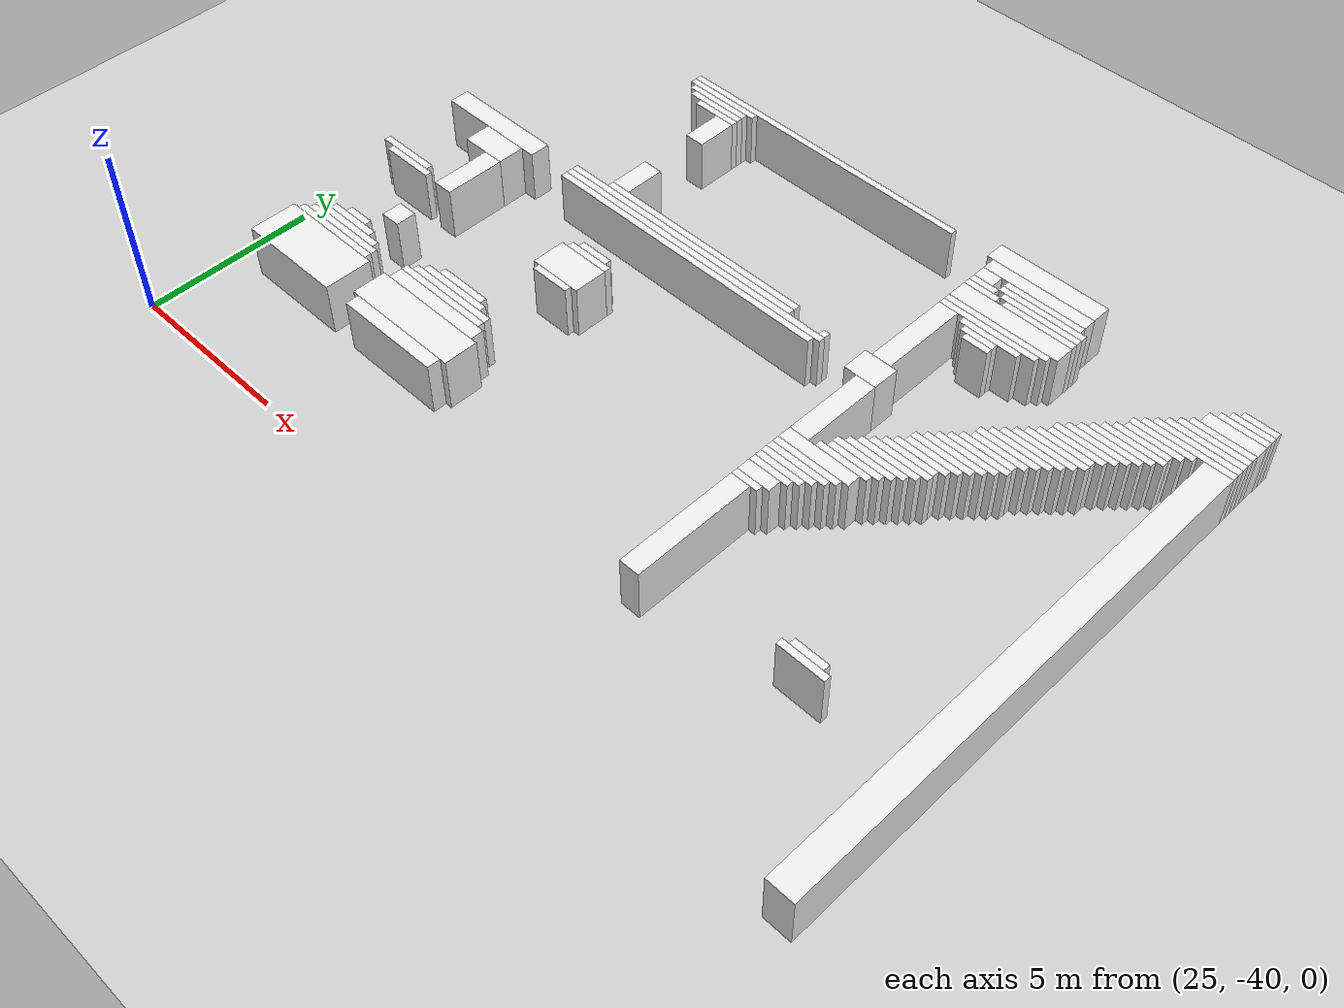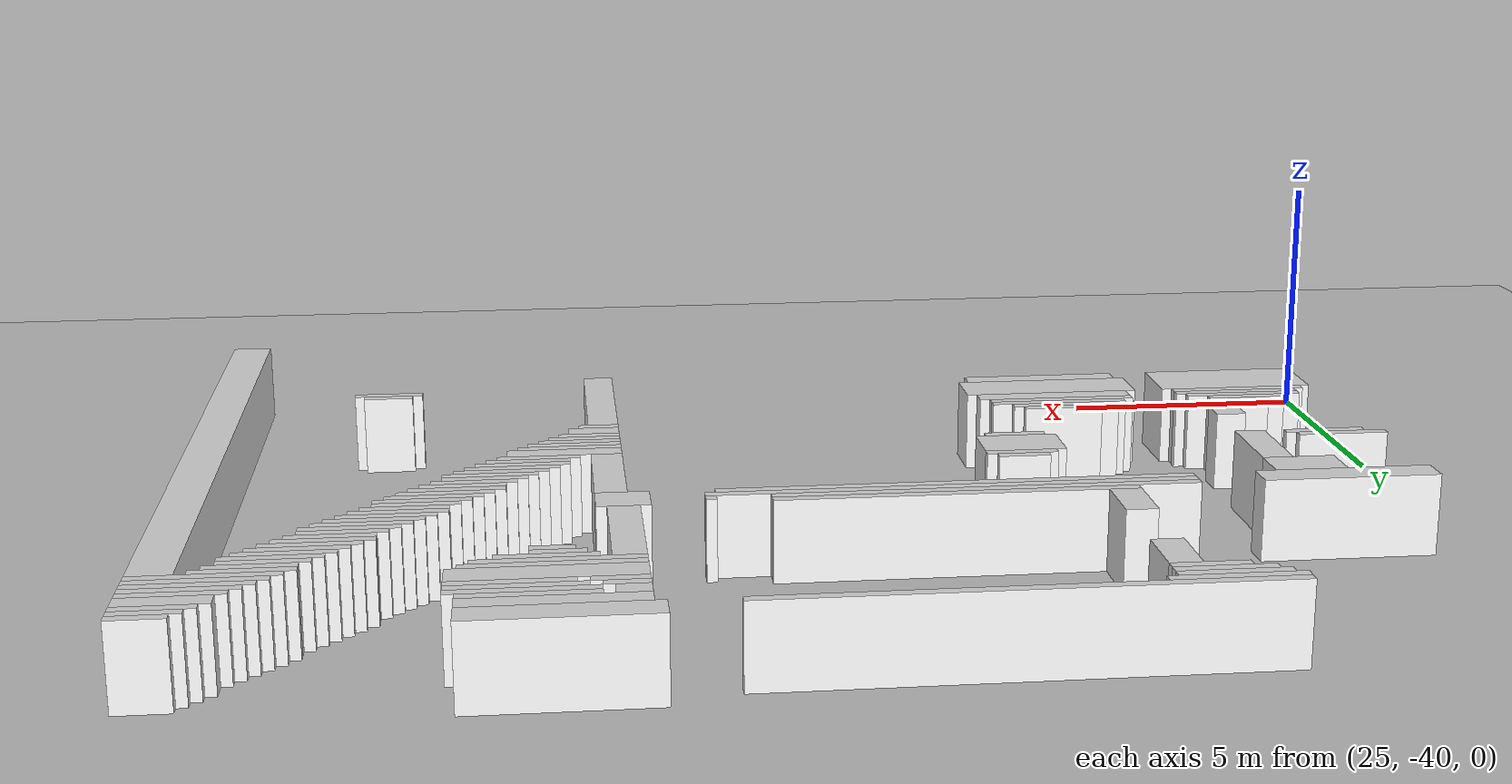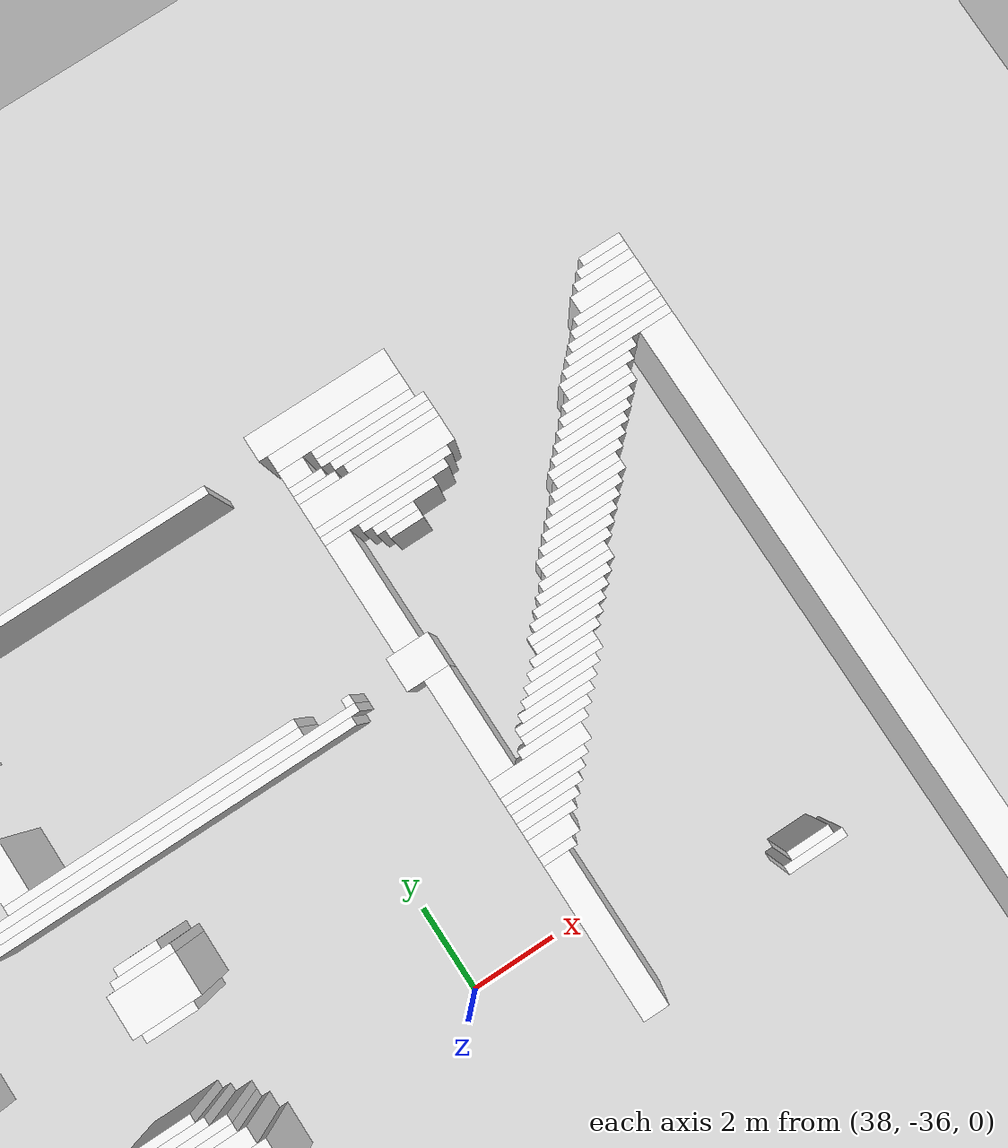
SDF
<sdf version="1.7">
 <world name="default">
  <model name="ground_plane">
   <static>1</static>
   <link name="link">
    <collision name="collision">
     <geometry><plane><normal>0 0 1</normal><size>120 120</size></plane></geometry>
    </collision>
    <visual name="visual">
     <geometry><plane><normal>0 0 1</normal><size>120 120</size></plane></geometry>
     <material>
      <script><uri>file://media/materials/scripts/gazebo.material</uri><name>Gazebo/Grey</name></script>
     </material>
    </visual>
   </link>
  </model>
  <model name="random_complex_02_model">
   <static>1</static>
   <link name="obs_2918">
    <pose>42.1000 -24.1000 0.8000 0 0 0</pose>
    <collision name="obs_2918_col"><geometry><box><size>3.4000 0.6000 1.6000</size></box></geometry></collision>
    <visual name="obs_2918_vis">
     <geometry><box><size>3.4000 0.6000 1.6000</size></box></geometry>
     <material>
      <script><uri>file://media/materials/scripts/gazebo.material</uri><name>Gazebo/White</name></script>
     </material>
    </visual>
   </link>
   <link name="obs_2926">
    <pose>34.5000 -24.3000 0.8000 0 0 0</pose>
    <collision name="obs_2926_col"><geometry><box><size>9.4000 0.2000 1.6000</size></box></geometry></collision>
    <visual name="obs_2926_vis">
     <geometry><box><size>9.4000 0.2000 1.6000</size></box></geometry>
     <material>
      <script><uri>file://media/materials/scripts/gazebo.material</uri><name>Gazebo/White</name></script>
     </material>
    </visual>
   </link>
   <link name="obs_2932">
    <pose>31.0000 -24.5000 0.8000 0 0 0</pose>
    <collision name="obs_2932_col"><geometry><box><size>2.4000 0.2000 1.6000</size></box></geometry></collision>
    <visual name="obs_2932_vis">
     <geometry><box><size>2.4000 0.2000 1.6000</size></box></geometry>
     <material>
      <script><uri>file://media/materials/scripts/gazebo.material</uri><name>Gazebo/White</name></script>
     </material>
    </visual>
   </link>
   <link name="obs_2933">
    <pose>48.7000 -24.5000 0.8000 0 0 0</pose>
    <collision name="obs_2933_col"><geometry><box><size>1.0000 0.2000 1.6000</size></box></geometry></collision>
    <visual name="obs_2933_vis">
     <geometry><box><size>1.0000 0.2000 1.6000</size></box></geometry>
     <material>
      <script><uri>file://media/materials/scripts/gazebo.material</uri><name>Gazebo/White</name></script>
     </material>
    </visual>
   </link>
   <link name="obs_2936">
    <pose>42.2000 -24.6000 0.8000 0 0 0</pose>
    <collision name="obs_2936_col"><geometry><box><size>3.2000 0.4000 1.6000</size></box></geometry></collision>
    <visual name="obs_2936_vis">
     <geometry><box><size>3.2000 0.4000 1.6000</size></box></geometry>
     <material>
      <script><uri>file://media/materials/scripts/gazebo.material</uri><name>Gazebo/White</name></script>
     </material>
    </visual>
   </link>
   <link name="obs_2940">
    <pose>31.0000 -24.7000 0.8000 0 0 0</pose>
    <collision name="obs_2940_col"><geometry><box><size>2.0000 0.2000 1.6000</size></box></geometry></collision>
    <visual name="obs_2940_vis">
     <geometry><box><size>2.0000 0.2000 1.6000</size></box></geometry>
     <material>
      <script><uri>file://media/materials/scripts/gazebo.material</uri><name>Gazebo/White</name></script>
     </material>
    </visual>
   </link>
   <link name="obs_2941">
    <pose>48.6000 -24.7000 0.8000 0 0 0</pose>
    <collision name="obs_2941_col"><geometry><box><size>1.2000 0.2000 1.6000</size></box></geometry></collision>
    <visual name="obs_2941_vis">
     <geometry><box><size>1.2000 0.2000 1.6000</size></box></geometry>
     <material>
      <script><uri>file://media/materials/scripts/gazebo.material</uri><name>Gazebo/White</name></script>
     </material>
    </visual>
   </link>
   <link name="obs_2946">
    <pose>31.1000 -24.9000 0.8000 0 0 0</pose>
    <collision name="obs_2946_col"><geometry><box><size>1.8000 0.2000 1.6000</size></box></geometry></collision>
    <visual name="obs_2946_vis">
     <geometry><box><size>1.8000 0.2000 1.6000</size></box></geometry>
     <material>
      <script><uri>file://media/materials/scripts/gazebo.material</uri><name>Gazebo/White</name></script>
     </material>
    </visual>
   </link>
   <link name="obs_2947">
    <pose>42.6000 -24.9000 0.8000 0 0 0</pose>
    <collision name="obs_2947_col"><geometry><box><size>2.4000 0.2000 1.6000</size></box></geometry></collision>
    <visual name="obs_2947_vis">
     <geometry><box><size>2.4000 0.2000 1.6000</size></box></geometry>
     <material>
      <script><uri>file://media/materials/scripts/gazebo.material</uri><name>Gazebo/White</name></script>
     </material>
    </visual>
   </link>
   <link name="obs_2948">
    <pose>48.5000 -24.9000 0.8000 0 0 0</pose>
    <collision name="obs_2948_col"><geometry><box><size>1.4000 0.2000 1.6000</size></box></geometry></collision>
    <visual name="obs_2948_vis">
     <geometry><box><size>1.4000 0.2000 1.6000</size></box></geometry>
     <material>
      <script><uri>file://media/materials/scripts/gazebo.material</uri><name>Gazebo/White</name></script>
     </material>
    </visual>
   </link>
   <link name="obs_2953">
    <pose>40.9000 -25.0000 0.8000 0 0 0</pose>
    <collision name="obs_2953_col"><geometry><box><size>0.6000 0.4000 1.6000</size></box></geometry></collision>
    <visual name="obs_2953_vis">
     <geometry><box><size>0.6000 0.4000 1.6000</size></box></geometry>
     <material>
      <script><uri>file://media/materials/scripts/gazebo.material</uri><name>Gazebo/White</name></script>
     </material>
    </visual>
   </link>
   <link name="obs_2955">
    <pose>31.3000 -25.1000 0.8000 0 0 0</pose>
    <collision name="obs_2955_col"><geometry><box><size>1.4000 0.2000 1.6000</size></box></geometry></collision>
    <visual name="obs_2955_vis">
     <geometry><box><size>1.4000 0.2000 1.6000</size></box></geometry>
     <material>
      <script><uri>file://media/materials/scripts/gazebo.material</uri><name>Gazebo/White</name></script>
     </material>
    </visual>
   </link>
   <link name="obs_2956">
    <pose>42.7000 -25.1000 0.8000 0 0 0</pose>
    <collision name="obs_2956_col"><geometry><box><size>2.6000 0.2000 1.6000</size></box></geometry></collision>
    <visual name="obs_2956_vis">
     <geometry><box><size>2.6000 0.2000 1.6000</size></box></geometry>
     <material>
      <script><uri>file://media/materials/scripts/gazebo.material</uri><name>Gazebo/White</name></script>
     </material>
    </visual>
   </link>
   <link name="obs_2959">
    <pose>48.4000 -25.2000 0.8000 0 0 0</pose>
    <collision name="obs_2959_col"><geometry><box><size>1.6000 0.4000 1.6000</size></box></geometry></collision>
    <visual name="obs_2959_vis">
     <geometry><box><size>1.6000 0.4000 1.6000</size></box></geometry>
     <material>
      <script><uri>file://media/materials/scripts/gazebo.material</uri><name>Gazebo/White</name></script>
     </material>
    </visual>
   </link>
   <link name="obs_2962">
    <pose>41.0000 -25.3000 0.8000 0 0 0</pose>
    <collision name="obs_2962_col"><geometry><box><size>0.8000 0.2000 1.6000</size></box></geometry></collision>
    <visual name="obs_2962_vis">
     <geometry><box><size>0.8000 0.2000 1.6000</size></box></geometry>
     <material>
      <script><uri>file://media/materials/scripts/gazebo.material</uri><name>Gazebo/White</name></script>
     </material>
    </visual>
   </link>
   <link name="obs_2963">
    <pose>42.8000 -25.3000 0.8000 0 0 0</pose>
    <collision name="obs_2963_col"><geometry><box><size>2.4000 0.2000 1.6000</size></box></geometry></collision>
    <visual name="obs_2963_vis">
     <geometry><box><size>2.4000 0.2000 1.6000</size></box></geometry>
     <material>
      <script><uri>file://media/materials/scripts/gazebo.material</uri><name>Gazebo/White</name></script>
     </material>
    </visual>
   </link>
   <link name="obs_2970">
    <pose>41.1000 -25.5000 0.8000 0 0 0</pose>
    <collision name="obs_2970_col"><geometry><box><size>1.0000 0.2000 1.6000</size></box></geometry></collision>
    <visual name="obs_2970_vis">
     <geometry><box><size>1.0000 0.2000 1.6000</size></box></geometry>
     <material>
      <script><uri>file://media/materials/scripts/gazebo.material</uri><name>Gazebo/White</name></script>
     </material>
    </visual>
   </link>
   <link name="obs_2971">
    <pose>42.9000 -25.5000 0.8000 0 0 0</pose>
    <collision name="obs_2971_col"><geometry><box><size>2.2000 0.2000 1.6000</size></box></geometry></collision>
    <visual name="obs_2971_vis">
     <geometry><box><size>2.2000 0.2000 1.6000</size></box></geometry>
     <material>
      <script><uri>file://media/materials/scripts/gazebo.material</uri><name>Gazebo/White</name></script>
     </material>
    </visual>
   </link>
   <link name="obs_2972">
    <pose>48.3000 -25.5000 0.8000 0 0 0</pose>
    <collision name="obs_2972_col"><geometry><box><size>1.8000 0.2000 1.6000</size></box></geometry></collision>
    <visual name="obs_2972_vis">
     <geometry><box><size>1.8000 0.2000 1.6000</size></box></geometry>
     <material>
      <script><uri>file://media/materials/scripts/gazebo.material</uri><name>Gazebo/White</name></script>
     </material>
    </visual>
   </link>
   <link name="obs_2976">
    <pose>48.2000 -25.7000 0.8000 0 0 0</pose>
    <collision name="obs_2976_col"><geometry><box><size>2.0000 0.2000 1.6000</size></box></geometry></collision>
    <visual name="obs_2976_vis">
     <geometry><box><size>2.0000 0.2000 1.6000</size></box></geometry>
     <material>
      <script><uri>file://media/materials/scripts/gazebo.material</uri><name>Gazebo/White</name></script>
     </material>
    </visual>
   </link>
   <link name="obs_2981">
    <pose>48.1000 -25.9000 0.8000 0 0 0</pose>
    <collision name="obs_2981_col"><geometry><box><size>2.2000 0.2000 1.6000</size></box></geometry></collision>
    <visual name="obs_2981_vis">
     <geometry><box><size>2.2000 0.2000 1.6000</size></box></geometry>
     <material>
      <script><uri>file://media/materials/scripts/gazebo.material</uri><name>Gazebo/White</name></script>
     </material>
    </visual>
   </link>
   <link name="obs_2983">
    <pose>42.3000 -25.9000 0.8000 0 0 0</pose>
    <collision name="obs_2983_col"><geometry><box><size>3.4000 0.6000 1.6000</size></box></geometry></collision>
    <visual name="obs_2983_vis">
     <geometry><box><size>3.4000 0.6000 1.6000</size></box></geometry>
     <material>
      <script><uri>file://media/materials/scripts/gazebo.material</uri><name>Gazebo/White</name></script>
     </material>
    </visual>
   </link>
   <link name="obs_2987">
    <pose>48.0000 -26.1000 0.8000 0 0 0</pose>
    <collision name="obs_2987_col"><geometry><box><size>2.4000 0.2000 1.6000</size></box></geometry></collision>
    <visual name="obs_2987_vis">
     <geometry><box><size>2.4000 0.2000 1.6000</size></box></geometry>
     <material>
      <script><uri>file://media/materials/scripts/gazebo.material</uri><name>Gazebo/White</name></script>
     </material>
    </visual>
   </link>
   <link name="obs_2989">
    <pose>31.7000 -25.8000 0.8000 0 0 0</pose>
    <collision name="obs_2989_col"><geometry><box><size>0.6000 1.2000 1.6000</size></box></geometry></collision>
    <visual name="obs_2989_vis">
     <geometry><box><size>0.6000 1.2000 1.6000</size></box></geometry>
     <material>
      <script><uri>file://media/materials/scripts/gazebo.material</uri><name>Gazebo/White</name></script>
     </material>
    </visual>
   </link>
   <link name="obs_2993">
    <pose>42.2000 -26.3000 0.8000 0 0 0</pose>
    <collision name="obs_2993_col"><geometry><box><size>3.2000 0.2000 1.6000</size></box></geometry></collision>
    <visual name="obs_2993_vis">
     <geometry><box><size>3.2000 0.2000 1.6000</size></box></geometry>
     <material>
      <script><uri>file://media/materials/scripts/gazebo.material</uri><name>Gazebo/White</name></script>
     </material>
    </visual>
   </link>
   <link name="obs_2994">
    <pose>47.9000 -26.3000 0.8000 0 0 0</pose>
    <collision name="obs_2994_col"><geometry><box><size>2.6000 0.2000 1.6000</size></box></geometry></collision>
    <visual name="obs_2994_vis">
     <geometry><box><size>2.6000 0.2000 1.6000</size></box></geometry>
     <material>
      <script><uri>file://media/materials/scripts/gazebo.material</uri><name>Gazebo/White</name></script>
     </material>
    </visual>
   </link>
   <link name="obs_2998">
    <pose>42.1000 -26.5000 0.8000 0 0 0</pose>
    <collision name="obs_2998_col"><geometry><box><size>3.0000 0.2000 1.6000</size></box></geometry></collision>
    <visual name="obs_2998_vis">
     <geometry><box><size>3.0000 0.2000 1.6000</size></box></geometry>
     <material>
      <script><uri>file://media/materials/scripts/gazebo.material</uri><name>Gazebo/White</name></script>
     </material>
    </visual>
   </link>
   <link name="obs_2999">
    <pose>47.3000 -26.5000 0.8000 0 0 0</pose>
    <collision name="obs_2999_col"><geometry><box><size>1.8000 0.2000 1.6000</size></box></geometry></collision>
    <visual name="obs_2999_vis">
     <geometry><box><size>1.8000 0.2000 1.6000</size></box></geometry>
     <material>
      <script><uri>file://media/materials/scripts/gazebo.material</uri><name>Gazebo/White</name></script>
     </material>
    </visual>
   </link>
   <link name="obs_3001">
    <pose>42.3000 -26.7000 0.8000 0 0 0</pose>
    <collision name="obs_3001_col"><geometry><box><size>1.8000 0.2000 1.6000</size></box></geometry></collision>
    <visual name="obs_3001_vis">
     <geometry><box><size>1.8000 0.2000 1.6000</size></box></geometry>
     <material>
      <script><uri>file://media/materials/scripts/gazebo.material</uri><name>Gazebo/White</name></script>
     </material>
    </visual>
   </link>
   <link name="obs_3002">
    <pose>47.2000 -26.7000 0.8000 0 0 0</pose>
    <collision name="obs_3002_col"><geometry><box><size>1.6000 0.2000 1.6000</size></box></geometry></collision>
    <visual name="obs_3002_vis">
     <geometry><box><size>1.6000 0.2000 1.6000</size></box></geometry>
     <material>
      <script><uri>file://media/materials/scripts/gazebo.material</uri><name>Gazebo/White</name></script>
     </material>
    </visual>
   </link>
   <link name="obs_3005">
    <pose>42.1000 -26.9000 0.8000 0 0 0</pose>
    <collision name="obs_3005_col"><geometry><box><size>1.0000 0.2000 1.6000</size></box></geometry></collision>
    <visual name="obs_3005_vis">
     <geometry><box><size>1.0000 0.2000 1.6000</size></box></geometry>
     <material>
      <script><uri>file://media/materials/scripts/gazebo.material</uri><name>Gazebo/White</name></script>
     </material>
    </visual>
   </link>
   <link name="obs_3006">
    <pose>47.0000 -26.9000 0.8000 0 0 0</pose>
    <collision name="obs_3006_col"><geometry><box><size>1.6000 0.2000 1.6000</size></box></geometry></collision>
    <visual name="obs_3006_vis">
     <geometry><box><size>1.6000 0.2000 1.6000</size></box></geometry>
     <material>
      <script><uri>file://media/materials/scripts/gazebo.material</uri><name>Gazebo/White</name></script>
     </material>
    </visual>
   </link>
   <link name="obs_3009">
    <pose>42.2000 -27.1000 0.8000 0 0 0</pose>
    <collision name="obs_3009_col"><geometry><box><size>0.8000 0.2000 1.6000</size></box></geometry></collision>
    <visual name="obs_3009_vis">
     <geometry><box><size>0.8000 0.2000 1.6000</size></box></geometry>
     <material>
      <script><uri>file://media/materials/scripts/gazebo.material</uri><name>Gazebo/White</name></script>
     </material>
    </visual>
   </link>
   <link name="obs_3010">
    <pose>46.9000 -27.1000 0.8000 0 0 0</pose>
    <collision name="obs_3010_col"><geometry><box><size>1.8000 0.2000 1.6000</size></box></geometry></collision>
    <visual name="obs_3010_vis">
     <geometry><box><size>1.8000 0.2000 1.6000</size></box></geometry>
     <material>
      <script><uri>file://media/materials/scripts/gazebo.material</uri><name>Gazebo/White</name></script>
     </material>
    </visual>
   </link>
   <link name="obs_3015">
    <pose>46.7000 -27.3000 0.8000 0 0 0</pose>
    <collision name="obs_3015_col"><geometry><box><size>1.8000 0.2000 1.6000</size></box></geometry></collision>
    <visual name="obs_3015_vis">
     <geometry><box><size>1.8000 0.2000 1.6000</size></box></geometry>
     <material>
      <script><uri>file://media/materials/scripts/gazebo.material</uri><name>Gazebo/White</name></script>
     </material>
    </visual>
   </link>
   <link name="obs_3018">
    <pose>46.5000 -27.5000 0.8000 0 0 0</pose>
    <collision name="obs_3018_col"><geometry><box><size>1.8000 0.2000 1.6000</size></box></geometry></collision>
    <visual name="obs_3018_vis">
     <geometry><box><size>1.8000 0.2000 1.6000</size></box></geometry>
     <material>
      <script><uri>file://media/materials/scripts/gazebo.material</uri><name>Gazebo/White</name></script>
     </material>
    </visual>
   </link>
   <link name="obs_3021">
    <pose>46.3000 -27.7000 0.8000 0 0 0</pose>
    <collision name="obs_3021_col"><geometry><box><size>1.8000 0.2000 1.6000</size></box></geometry></collision>
    <visual name="obs_3021_vis">
     <geometry><box><size>1.8000 0.2000 1.6000</size></box></geometry>
     <material>
      <script><uri>file://media/materials/scripts/gazebo.material</uri><name>Gazebo/White</name></script>
     </material>
    </visual>
   </link>
   <link name="obs_3025">
    <pose>46.1000 -27.9000 0.8000 0 0 0</pose>
    <collision name="obs_3025_col"><geometry><box><size>1.8000 0.2000 1.6000</size></box></geometry></collision>
    <visual name="obs_3025_vis">
     <geometry><box><size>1.8000 0.2000 1.6000</size></box></geometry>
     <material>
      <script><uri>file://media/materials/scripts/gazebo.material</uri><name>Gazebo/White</name></script>
     </material>
    </visual>
   </link>
   <link name="obs_3032">
    <pose>46.0000 -28.1000 0.8000 0 0 0</pose>
    <collision name="obs_3032_col"><geometry><box><size>1.6000 0.2000 1.6000</size></box></geometry></collision>
    <visual name="obs_3032_vis">
     <geometry><box><size>1.6000 0.2000 1.6000</size></box></geometry>
     <material>
      <script><uri>file://media/materials/scripts/gazebo.material</uri><name>Gazebo/White</name></script>
     </material>
    </visual>
   </link>
   <link name="obs_3036">
    <pose>45.8000 -28.3000 0.8000 0 0 0</pose>
    <collision name="obs_3036_col"><geometry><box><size>1.6000 0.2000 1.6000</size></box></geometry></collision>
    <visual name="obs_3036_vis">
     <geometry><box><size>1.6000 0.2000 1.6000</size></box></geometry>
     <material>
      <script><uri>file://media/materials/scripts/gazebo.material</uri><name>Gazebo/White</name></script>
     </material>
    </visual>
   </link>
   <link name="obs_3040">
    <pose>45.7000 -28.5000 0.8000 0 0 0</pose>
    <collision name="obs_3040_col"><geometry><box><size>1.8000 0.2000 1.6000</size></box></geometry></collision>
    <visual name="obs_3040_vis">
     <geometry><box><size>1.8000 0.2000 1.6000</size></box></geometry>
     <material>
      <script><uri>file://media/materials/scripts/gazebo.material</uri><name>Gazebo/White</name></script>
     </material>
    </visual>
   </link>
   <link name="obs_3045">
    <pose>45.5000 -28.7000 0.8000 0 0 0</pose>
    <collision name="obs_3045_col"><geometry><box><size>1.8000 0.2000 1.6000</size></box></geometry></collision>
    <visual name="obs_3045_vis">
     <geometry><box><size>1.8000 0.2000 1.6000</size></box></geometry>
     <material>
      <script><uri>file://media/materials/scripts/gazebo.material</uri><name>Gazebo/White</name></script>
     </material>
    </visual>
   </link>
   <link name="obs_3049">
    <pose>45.3000 -28.9000 0.8000 0 0 0</pose>
    <collision name="obs_3049_col"><geometry><box><size>1.8000 0.2000 1.6000</size></box></geometry></collision>
    <visual name="obs_3049_vis">
     <geometry><box><size>1.8000 0.2000 1.6000</size></box></geometry>
     <material>
      <script><uri>file://media/materials/scripts/gazebo.material</uri><name>Gazebo/White</name></script>
     </material>
    </visual>
   </link>
   <link name="obs_3050">
    <pose>40.9000 -27.9000 0.8000 0 0 0</pose>
    <collision name="obs_3050_col"><geometry><box><size>0.6000 2.6000 1.6000</size></box></geometry></collision>
    <visual name="obs_3050_vis">
     <geometry><box><size>0.6000 2.6000 1.6000</size></box></geometry>
     <material>
      <script><uri>file://media/materials/scripts/gazebo.material</uri><name>Gazebo/White</name></script>
     </material>
    </visual>
   </link>
   <link name="obs_3051">
    <pose>31.7000 -28.6000 0.8000 0 0 0</pose>
    <collision name="obs_3051_col"><geometry><box><size>0.6000 1.2000 1.6000</size></box></geometry></collision>
    <visual name="obs_3051_vis">
     <geometry><box><size>0.6000 1.2000 1.6000</size></box></geometry>
     <material>
      <script><uri>file://media/materials/scripts/gazebo.material</uri><name>Gazebo/White</name></script>
     </material>
    </visual>
   </link>
   <link name="obs_3055">
    <pose>45.1000 -29.1000 0.8000 0 0 0</pose>
    <collision name="obs_3055_col"><geometry><box><size>1.8000 0.2000 1.6000</size></box></geometry></collision>
    <visual name="obs_3055_vis">
     <geometry><box><size>1.8000 0.2000 1.6000</size></box></geometry>
     <material>
      <script><uri>file://media/materials/scripts/gazebo.material</uri><name>Gazebo/White</name></script>
     </material>
    </visual>
   </link>
   <link name="obs_3062">
    <pose>34.8000 -29.3000 0.8000 0 0 0</pose>
    <collision name="obs_3062_col"><geometry><box><size>6.8000 0.2000 1.6000</size></box></geometry></collision>
    <visual name="obs_3062_vis">
     <geometry><box><size>6.8000 0.2000 1.6000</size></box></geometry>
     <material>
      <script><uri>file://media/materials/scripts/gazebo.material</uri><name>Gazebo/White</name></script>
     </material>
    </visual>
   </link>
   <link name="obs_3063">
    <pose>44.9000 -29.3000 0.8000 0 0 0</pose>
    <collision name="obs_3063_col"><geometry><box><size>1.8000 0.2000 1.6000</size></box></geometry></collision>
    <visual name="obs_3063_vis">
     <geometry><box><size>1.8000 0.2000 1.6000</size></box></geometry>
     <material>
      <script><uri>file://media/materials/scripts/gazebo.material</uri><name>Gazebo/White</name></script>
     </material>
    </visual>
   </link>
   <link name="obs_3069">
    <pose>34.2000 -29.5000 0.8000 0 0 0</pose>
    <collision name="obs_3069_col"><geometry><box><size>8.0000 0.2000 1.6000</size></box></geometry></collision>
    <visual name="obs_3069_vis">
     <geometry><box><size>8.0000 0.2000 1.6000</size></box></geometry>
     <material>
      <script><uri>file://media/materials/scripts/gazebo.material</uri><name>Gazebo/White</name></script>
     </material>
    </visual>
   </link>
   <link name="obs_3070">
    <pose>39.3000 -29.5000 0.8000 0 0 0</pose>
    <collision name="obs_3070_col"><geometry><box><size>0.2000 0.2000 1.6000</size></box></geometry></collision>
    <visual name="obs_3070_vis">
     <geometry><box><size>0.2000 0.2000 1.6000</size></box></geometry>
     <material>
      <script><uri>file://media/materials/scripts/gazebo.material</uri><name>Gazebo/White</name></script>
     </material>
    </visual>
   </link>
   <link name="obs_3071">
    <pose>44.8000 -29.5000 0.8000 0 0 0</pose>
    <collision name="obs_3071_col"><geometry><box><size>1.6000 0.2000 1.6000</size></box></geometry></collision>
    <visual name="obs_3071_vis">
     <geometry><box><size>1.6000 0.2000 1.6000</size></box></geometry>
     <material>
      <script><uri>file://media/materials/scripts/gazebo.material</uri><name>Gazebo/White</name></script>
     </material>
    </visual>
   </link>
   <link name="obs_3076">
    <pose>34.8000 -29.7000 0.8000 0 0 0</pose>
    <collision name="obs_3076_col"><geometry><box><size>9.2000 0.2000 1.6000</size></box></geometry></collision>
    <visual name="obs_3076_vis">
     <geometry><box><size>9.2000 0.2000 1.6000</size></box></geometry>
     <material>
      <script><uri>file://media/materials/scripts/gazebo.material</uri><name>Gazebo/White</name></script>
     </material>
    </visual>
   </link>
   <link name="obs_3077">
    <pose>44.6000 -29.7000 0.8000 0 0 0</pose>
    <collision name="obs_3077_col"><geometry><box><size>1.6000 0.2000 1.6000</size></box></geometry></collision>
    <visual name="obs_3077_vis">
     <geometry><box><size>1.6000 0.2000 1.6000</size></box></geometry>
     <material>
      <script><uri>file://media/materials/scripts/gazebo.material</uri><name>Gazebo/White</name></script>
     </material>
    </visual>
   </link>
   <link name="obs_3078">
    <pose>40.9000 -29.6000 0.8000 0 0 0</pose>
    <collision name="obs_3078_col"><geometry><box><size>1.0000 0.8000 1.6000</size></box></geometry></collision>
    <visual name="obs_3078_vis">
     <geometry><box><size>1.0000 0.8000 1.6000</size></box></geometry>
     <material>
      <script><uri>file://media/materials/scripts/gazebo.material</uri><name>Gazebo/White</name></script>
     </material>
    </visual>
   </link>
   <link name="obs_3079">
    <pose>27.3000 -29.7000 0.8000 0 0 0</pose>
    <collision name="obs_3079_col"><geometry><box><size>3.4000 0.6000 1.6000</size></box></geometry></collision>
    <visual name="obs_3079_vis">
     <geometry><box><size>3.4000 0.6000 1.6000</size></box></geometry>
     <material>
      <script><uri>file://media/materials/scripts/gazebo.material</uri><name>Gazebo/White</name></script>
     </material>
    </visual>
   </link>
   <link name="obs_3082">
    <pose>34.7000 -29.9000 0.8000 0 0 0</pose>
    <collision name="obs_3082_col"><geometry><box><size>9.0000 0.2000 1.6000</size></box></geometry></collision>
    <visual name="obs_3082_vis">
     <geometry><box><size>9.0000 0.2000 1.6000</size></box></geometry>
     <material>
      <script><uri>file://media/materials/scripts/gazebo.material</uri><name>Gazebo/White</name></script>
     </material>
    </visual>
   </link>
   <link name="obs_3083">
    <pose>44.5000 -29.9000 0.8000 0 0 0</pose>
    <collision name="obs_3083_col"><geometry><box><size>1.8000 0.2000 1.6000</size></box></geometry></collision>
    <visual name="obs_3083_vis">
     <geometry><box><size>1.8000 0.2000 1.6000</size></box></geometry>
     <material>
      <script><uri>file://media/materials/scripts/gazebo.material</uri><name>Gazebo/White</name></script>
     </material>
    </visual>
   </link>
   <link name="obs_3089">
    <pose>44.3000 -30.1000 0.8000 0 0 0</pose>
    <collision name="obs_3089_col"><geometry><box><size>1.8000 0.2000 1.6000</size></box></geometry></collision>
    <visual name="obs_3089_vis">
     <geometry><box><size>1.8000 0.2000 1.6000</size></box></geometry>
     <material>
      <script><uri>file://media/materials/scripts/gazebo.material</uri><name>Gazebo/White</name></script>
     </material>
    </visual>
   </link>
   <link name="obs_3093">
    <pose>44.1000 -30.3000 0.8000 0 0 0</pose>
    <collision name="obs_3093_col"><geometry><box><size>1.8000 0.2000 1.6000</size></box></geometry></collision>
    <visual name="obs_3093_vis">
     <geometry><box><size>1.8000 0.2000 1.6000</size></box></geometry>
     <material>
      <script><uri>file://media/materials/scripts/gazebo.material</uri><name>Gazebo/White</name></script>
     </material>
    </visual>
   </link>
   <link name="obs_3099">
    <pose>43.9000 -30.5000 0.8000 0 0 0</pose>
    <collision name="obs_3099_col"><geometry><box><size>1.8000 0.2000 1.6000</size></box></geometry></collision>
    <visual name="obs_3099_vis">
     <geometry><box><size>1.8000 0.2000 1.6000</size></box></geometry>
     <material>
      <script><uri>file://media/materials/scripts/gazebo.material</uri><name>Gazebo/White</name></script>
     </material>
    </visual>
   </link>
   <link name="obs_3100">
    <pose>27.9000 -30.4000 0.8000 0 0 0</pose>
    <collision name="obs_3100_col"><geometry><box><size>1.4000 0.8000 1.6000</size></box></geometry></collision>
    <visual name="obs_3100_vis">
     <geometry><box><size>1.4000 0.8000 1.6000</size></box></geometry>
     <material>
      <script><uri>file://media/materials/scripts/gazebo.material</uri><name>Gazebo/White</name></script>
     </material>
    </visual>
   </link>
   <link name="obs_3106">
    <pose>43.8000 -30.7000 0.8000 0 0 0</pose>
    <collision name="obs_3106_col"><geometry><box><size>1.6000 0.2000 1.6000</size></box></geometry></collision>
    <visual name="obs_3106_vis">
     <geometry><box><size>1.6000 0.2000 1.6000</size></box></geometry>
     <material>
      <script><uri>file://media/materials/scripts/gazebo.material</uri><name>Gazebo/White</name></script>
     </material>
    </visual>
   </link>
   <link name="obs_3112">
    <pose>43.6000 -30.9000 0.8000 0 0 0</pose>
    <collision name="obs_3112_col"><geometry><box><size>1.6000 0.2000 1.6000</size></box></geometry></collision>
    <visual name="obs_3112_vis">
     <geometry><box><size>1.6000 0.2000 1.6000</size></box></geometry>
     <material>
      <script><uri>file://media/materials/scripts/gazebo.material</uri><name>Gazebo/White</name></script>
     </material>
    </visual>
   </link>
   <link name="obs_3121">
    <pose>43.4000 -31.1000 0.8000 0 0 0</pose>
    <collision name="obs_3121_col"><geometry><box><size>1.6000 0.2000 1.6000</size></box></geometry></collision>
    <visual name="obs_3121_vis">
     <geometry><box><size>1.6000 0.2000 1.6000</size></box></geometry>
     <material>
      <script><uri>file://media/materials/scripts/gazebo.material</uri><name>Gazebo/White</name></script>
     </material>
    </visual>
   </link>
   <link name="obs_3126">
    <pose>43.3000 -31.3000 0.8000 0 0 0</pose>
    <collision name="obs_3126_col"><geometry><box><size>1.8000 0.2000 1.6000</size></box></geometry></collision>
    <visual name="obs_3126_vis">
     <geometry><box><size>1.8000 0.2000 1.6000</size></box></geometry>
     <material>
      <script><uri>file://media/materials/scripts/gazebo.material</uri><name>Gazebo/White</name></script>
     </material>
    </visual>
   </link>
   <link name="obs_3131">
    <pose>33.1000 -31.5000 0.8000 0 0 0</pose>
    <collision name="obs_3131_col"><geometry><box><size>1.0000 0.2000 1.6000</size></box></geometry></collision>
    <visual name="obs_3131_vis">
     <geometry><box><size>1.0000 0.2000 1.6000</size></box></geometry>
     <material>
      <script><uri>file://media/materials/scripts/gazebo.material</uri><name>Gazebo/White</name></script>
     </material>
    </visual>
   </link>
   <link name="obs_3132">
    <pose>43.1000 -31.5000 0.8000 0 0 0</pose>
    <collision name="obs_3132_col"><geometry><box><size>1.8000 0.2000 1.6000</size></box></geometry></collision>
    <visual name="obs_3132_vis">
     <geometry><box><size>1.8000 0.2000 1.6000</size></box></geometry>
     <material>
      <script><uri>file://media/materials/scripts/gazebo.material</uri><name>Gazebo/White</name></script>
     </material>
    </visual>
   </link>
   <link name="obs_3137">
    <pose>33.1000 -31.7000 0.8000 0 0 0</pose>
    <collision name="obs_3137_col"><geometry><box><size>1.4000 0.2000 1.6000</size></box></geometry></collision>
    <visual name="obs_3137_vis">
     <geometry><box><size>1.4000 0.2000 1.6000</size></box></geometry>
     <material>
      <script><uri>file://media/materials/scripts/gazebo.material</uri><name>Gazebo/White</name></script>
     </material>
    </visual>
   </link>
   <link name="obs_3138">
    <pose>42.9000 -31.7000 0.8000 0 0 0</pose>
    <collision name="obs_3138_col"><geometry><box><size>1.8000 0.2000 1.6000</size></box></geometry></collision>
    <visual name="obs_3138_vis">
     <geometry><box><size>1.8000 0.2000 1.6000</size></box></geometry>
     <material>
      <script><uri>file://media/materials/scripts/gazebo.material</uri><name>Gazebo/White</name></script>
     </material>
    </visual>
   </link>
   <link name="obs_3148">
    <pose>42.7000 -31.9000 0.8000 0 0 0</pose>
    <collision name="obs_3148_col"><geometry><box><size>1.8000 0.2000 1.6000</size></box></geometry></collision>
    <visual name="obs_3148_vis">
     <geometry><box><size>1.8000 0.2000 1.6000</size></box></geometry>
     <material>
      <script><uri>file://media/materials/scripts/gazebo.material</uri><name>Gazebo/White</name></script>
     </material>
    </visual>
   </link>
   <link name="obs_3152">
    <pose>42.6000 -32.1000 0.8000 0 0 0</pose>
    <collision name="obs_3152_col"><geometry><box><size>1.6000 0.2000 1.6000</size></box></geometry></collision>
    <visual name="obs_3152_vis">
     <geometry><box><size>1.6000 0.2000 1.6000</size></box></geometry>
     <material>
      <script><uri>file://media/materials/scripts/gazebo.material</uri><name>Gazebo/White</name></script>
     </material>
    </visual>
   </link>
   <link name="obs_3153">
    <pose>41.1000 -31.2000 0.8000 0 0 0</pose>
    <collision name="obs_3153_col"><geometry><box><size>0.6000 2.4000 1.6000</size></box></geometry></collision>
    <visual name="obs_3153_vis">
     <geometry><box><size>0.6000 2.4000 1.6000</size></box></geometry>
     <material>
      <script><uri>file://media/materials/scripts/gazebo.material</uri><name>Gazebo/White</name></script>
     </material>
    </visual>
   </link>
   <link name="obs_3156">
    <pose>26.5000 -32.3000 0.8000 0 0 0</pose>
    <collision name="obs_3156_col"><geometry><box><size>1.8000 0.2000 1.6000</size></box></geometry></collision>
    <visual name="obs_3156_vis">
     <geometry><box><size>1.8000 0.2000 1.6000</size></box></geometry>
     <material>
      <script><uri>file://media/materials/scripts/gazebo.material</uri><name>Gazebo/White</name></script>
     </material>
    </visual>
   </link>
   <link name="obs_3157">
    <pose>42.4000 -32.3000 0.8000 0 0 0</pose>
    <collision name="obs_3157_col"><geometry><box><size>1.6000 0.2000 1.6000</size></box></geometry></collision>
    <visual name="obs_3157_vis">
     <geometry><box><size>1.6000 0.2000 1.6000</size></box></geometry>
     <material>
      <script><uri>file://media/materials/scripts/gazebo.material</uri><name>Gazebo/White</name></script>
     </material>
    </visual>
   </link>
   <link name="obs_3158">
    <pose>28.3000 -31.7000 0.8000 0 0 0</pose>
    <collision name="obs_3158_col"><geometry><box><size>0.6000 1.8000 1.6000</size></box></geometry></collision>
    <visual name="obs_3158_vis">
     <geometry><box><size>0.6000 1.8000 1.6000</size></box></geometry>
     <material>
      <script><uri>file://media/materials/scripts/gazebo.material</uri><name>Gazebo/White</name></script>
     </material>
    </visual>
   </link>
   <link name="obs_3160">
    <pose>26.8000 -32.5000 0.8000 0 0 0</pose>
    <collision name="obs_3160_col"><geometry><box><size>1.6000 0.2000 1.6000</size></box></geometry></collision>
    <visual name="obs_3160_vis">
     <geometry><box><size>1.6000 0.2000 1.6000</size></box></geometry>
     <material>
      <script><uri>file://media/materials/scripts/gazebo.material</uri><name>Gazebo/White</name></script>
     </material>
    </visual>
   </link>
   <link name="obs_3161">
    <pose>33.0000 -32.3000 0.8000 0 0 0</pose>
    <collision name="obs_3161_col"><geometry><box><size>1.6000 1.0000 1.6000</size></box></geometry></collision>
    <visual name="obs_3161_vis">
     <geometry><box><size>1.6000 1.0000 1.6000</size></box></geometry>
     <material>
      <script><uri>file://media/materials/scripts/gazebo.material</uri><name>Gazebo/White</name></script>
     </material>
    </visual>
   </link>
   <link name="obs_3162">
    <pose>41.9000 -32.6000 0.8000 0 0 0</pose>
    <collision name="obs_3162_col"><geometry><box><size>2.2000 0.4000 1.6000</size></box></geometry></collision>
    <visual name="obs_3162_vis">
     <geometry><box><size>2.2000 0.4000 1.6000</size></box></geometry>
     <material>
      <script><uri>file://media/materials/scripts/gazebo.material</uri><name>Gazebo/White</name></script>
     </material>
    </visual>
   </link>
   <link name="obs_3165">
    <pose>33.0000 -32.9000 0.8000 0 0 0</pose>
    <collision name="obs_3165_col"><geometry><box><size>1.2000 0.2000 1.6000</size></box></geometry></collision>
    <visual name="obs_3165_vis">
     <geometry><box><size>1.2000 0.2000 1.6000</size></box></geometry>
     <material>
      <script><uri>file://media/materials/scripts/gazebo.material</uri><name>Gazebo/White</name></script>
     </material>
    </visual>
   </link>
   <link name="obs_3166">
    <pose>41.8000 -32.9000 0.8000 0 0 0</pose>
    <collision name="obs_3166_col"><geometry><box><size>2.0000 0.2000 1.6000</size></box></geometry></collision>
    <visual name="obs_3166_vis">
     <geometry><box><size>2.0000 0.2000 1.6000</size></box></geometry>
     <material>
      <script><uri>file://media/materials/scripts/gazebo.material</uri><name>Gazebo/White</name></script>
     </material>
    </visual>
   </link>
   <link name="obs_3170">
    <pose>41.7000 -33.1000 0.8000 0 0 0</pose>
    <collision name="obs_3170_col"><geometry><box><size>1.8000 0.2000 1.6000</size></box></geometry></collision>
    <visual name="obs_3170_vis">
     <geometry><box><size>1.8000 0.2000 1.6000</size></box></geometry>
     <material>
      <script><uri>file://media/materials/scripts/gazebo.material</uri><name>Gazebo/White</name></script>
     </material>
    </visual>
   </link>
   <link name="obs_3173">
    <pose>41.6000 -33.3000 0.8000 0 0 0</pose>
    <collision name="obs_3173_col"><geometry><box><size>1.6000 0.2000 1.6000</size></box></geometry></collision>
    <visual name="obs_3173_vis">
     <geometry><box><size>1.6000 0.2000 1.6000</size></box></geometry>
     <material>
      <script><uri>file://media/materials/scripts/gazebo.material</uri><name>Gazebo/White</name></script>
     </material>
    </visual>
   </link>
   <link name="obs_3175">
    <pose>41.5000 -33.5000 0.8000 0 0 0</pose>
    <collision name="obs_3175_col"><geometry><box><size>1.4000 0.2000 1.6000</size></box></geometry></collision>
    <visual name="obs_3175_vis">
     <geometry><box><size>1.4000 0.2000 1.6000</size></box></geometry>
     <material>
      <script><uri>file://media/materials/scripts/gazebo.material</uri><name>Gazebo/White</name></script>
     </material>
    </visual>
   </link>
   <link name="obs_3177">
    <pose>41.4000 -33.7000 0.8000 0 0 0</pose>
    <collision name="obs_3177_col"><geometry><box><size>1.2000 0.2000 1.6000</size></box></geometry></collision>
    <visual name="obs_3177_vis">
     <geometry><box><size>1.2000 0.2000 1.6000</size></box></geometry>
     <material>
      <script><uri>file://media/materials/scripts/gazebo.material</uri><name>Gazebo/White</name></script>
     </material>
    </visual>
   </link>
   <link name="obs_3179">
    <pose>41.3000 -34.0000 0.8000 0 0 0</pose>
    <collision name="obs_3179_col"><geometry><box><size>1.0000 0.4000 1.6000</size></box></geometry></collision>
    <visual name="obs_3179_vis">
     <geometry><box><size>1.0000 0.4000 1.6000</size></box></geometry>
     <material>
      <script><uri>file://media/materials/scripts/gazebo.material</uri><name>Gazebo/White</name></script>
     </material>
    </visual>
   </link>
   <link name="obs_3184">
    <pose>28.3000 -34.1000 0.8000 0 0 0</pose>
    <collision name="obs_3184_col"><geometry><box><size>0.6000 0.6000 1.6000</size></box></geometry></collision>
    <visual name="obs_3184_vis">
     <geometry><box><size>0.6000 0.6000 1.6000</size></box></geometry>
     <material>
      <script><uri>file://media/materials/scripts/gazebo.material</uri><name>Gazebo/White</name></script>
     </material>
    </visual>
   </link>
   <link name="obs_3186">
    <pose>41.2000 -34.3000 0.8000 0 0 0</pose>
    <collision name="obs_3186_col"><geometry><box><size>0.8000 0.2000 1.6000</size></box></geometry></collision>
    <visual name="obs_3186_vis">
     <geometry><box><size>0.8000 0.2000 1.6000</size></box></geometry>
     <material>
      <script><uri>file://media/materials/scripts/gazebo.material</uri><name>Gazebo/White</name></script>
     </material>
    </visual>
   </link>
   <link name="obs_3190">
    <pose>31.6000 -34.7000 0.8000 0 0 0</pose>
    <collision name="obs_3190_col"><geometry><box><size>1.6000 0.2000 1.6000</size></box></geometry></collision>
    <visual name="obs_3190_vis">
     <geometry><box><size>1.6000 0.2000 1.6000</size></box></geometry>
     <material>
      <script><uri>file://media/materials/scripts/gazebo.material</uri><name>Gazebo/White</name></script>
     </material>
    </visual>
   </link>
   <link name="obs_3192">
    <pose>27.6000 -34.9000 0.8000 0 0 0</pose>
    <collision name="obs_3192_col"><geometry><box><size>0.8000 0.2000 1.6000</size></box></geometry></collision>
    <visual name="obs_3192_vis">
     <geometry><box><size>0.8000 0.2000 1.6000</size></box></geometry>
     <material>
      <script><uri>file://media/materials/scripts/gazebo.material</uri><name>Gazebo/White</name></script>
     </material>
    </visual>
   </link>
   <link name="obs_3193">
    <pose>31.5000 -34.9000 0.8000 0 0 0</pose>
    <collision name="obs_3193_col"><geometry><box><size>2.2000 0.2000 1.6000</size></box></geometry></collision>
    <visual name="obs_3193_vis">
     <geometry><box><size>2.2000 0.2000 1.6000</size></box></geometry>
     <material>
      <script><uri>file://media/materials/scripts/gazebo.material</uri><name>Gazebo/White</name></script>
     </material>
    </visual>
   </link>
   <link name="obs_3194">
    <pose>27.6000 -35.1000 0.8000 0 0 0</pose>
    <collision name="obs_3194_col"><geometry><box><size>1.6000 0.2000 1.6000</size></box></geometry></collision>
    <visual name="obs_3194_vis">
     <geometry><box><size>1.6000 0.2000 1.6000</size></box></geometry>
     <material>
      <script><uri>file://media/materials/scripts/gazebo.material</uri><name>Gazebo/White</name></script>
     </material>
    </visual>
   </link>
   <link name="obs_3195">
    <pose>31.6000 -35.1000 0.8000 0 0 0</pose>
    <collision name="obs_3195_col"><geometry><box><size>2.8000 0.2000 1.6000</size></box></geometry></collision>
    <visual name="obs_3195_vis">
     <geometry><box><size>2.8000 0.2000 1.6000</size></box></geometry>
     <material>
      <script><uri>file://media/materials/scripts/gazebo.material</uri><name>Gazebo/White</name></script>
     </material>
    </visual>
   </link>
   <link name="obs_3198">
    <pose>27.6000 -35.3000 0.8000 0 0 0</pose>
    <collision name="obs_3198_col"><geometry><box><size>2.4000 0.2000 1.6000</size></box></geometry></collision>
    <visual name="obs_3198_vis">
     <geometry><box><size>2.4000 0.2000 1.6000</size></box></geometry>
     <material>
      <script><uri>file://media/materials/scripts/gazebo.material</uri><name>Gazebo/White</name></script>
     </material>
    </visual>
   </link>
   <link name="obs_3199">
    <pose>31.5000 -35.3000 0.8000 0 0 0</pose>
    <collision name="obs_3199_col"><geometry><box><size>3.0000 0.2000 1.6000</size></box></geometry></collision>
    <visual name="obs_3199_vis">
     <geometry><box><size>3.0000 0.2000 1.6000</size></box></geometry>
     <material>
      <script><uri>file://media/materials/scripts/gazebo.material</uri><name>Gazebo/White</name></script>
     </material>
    </visual>
   </link>
   <link name="obs_3202">
    <pose>27.7000 -35.5000 0.8000 0 0 0</pose>
    <collision name="obs_3202_col"><geometry><box><size>2.6000 0.2000 1.6000</size></box></geometry></collision>
    <visual name="obs_3202_vis">
     <geometry><box><size>2.6000 0.2000 1.6000</size></box></geometry>
     <material>
      <script><uri>file://media/materials/scripts/gazebo.material</uri><name>Gazebo/White</name></script>
     </material>
    </visual>
   </link>
   <link name="obs_3203">
    <pose>31.6000 -35.6000 0.8000 0 0 0</pose>
    <collision name="obs_3203_col"><geometry><box><size>3.2000 0.4000 1.6000</size></box></geometry></collision>
    <visual name="obs_3203_vis">
     <geometry><box><size>3.2000 0.4000 1.6000</size></box></geometry>
     <material>
      <script><uri>file://media/materials/scripts/gazebo.material</uri><name>Gazebo/White</name></script>
     </material>
    </visual>
   </link>
   <link name="obs_3205">
    <pose>27.6000 -35.7000 0.8000 0 0 0</pose>
    <collision name="obs_3205_col"><geometry><box><size>2.8000 0.2000 1.6000</size></box></geometry></collision>
    <visual name="obs_3205_vis">
     <geometry><box><size>2.8000 0.2000 1.6000</size></box></geometry>
     <material>
      <script><uri>file://media/materials/scripts/gazebo.material</uri><name>Gazebo/White</name></script>
     </material>
    </visual>
   </link>
   <link name="obs_3217">
    <pose>31.6000 -36.3000 0.8000 0 0 0</pose>
    <collision name="obs_3217_col"><geometry><box><size>3.6000 1.0000 1.6000</size></box></geometry></collision>
    <visual name="obs_3217_vis">
     <geometry><box><size>3.6000 1.0000 1.6000</size></box></geometry>
     <material>
      <script><uri>file://media/materials/scripts/gazebo.material</uri><name>Gazebo/White</name></script>
     </material>
    </visual>
   </link>
   <link name="obs_3225">
    <pose>45.5000 -36.9000 0.8000 0 0 0</pose>
    <collision name="obs_3225_col"><geometry><box><size>1.0000 0.2000 1.6000</size></box></geometry></collision>
    <visual name="obs_3225_vis">
     <geometry><box><size>1.0000 0.2000 1.6000</size></box></geometry>
     <material>
      <script><uri>file://media/materials/scripts/gazebo.material</uri><name>Gazebo/White</name></script>
     </material>
    </visual>
   </link>
   <link name="obs_3227">
    <pose>27.6000 -36.5000 0.8000 0 0 0</pose>
    <collision name="obs_3227_col"><geometry><box><size>3.2000 1.4000 1.6000</size></box></geometry></collision>
    <visual name="obs_3227_vis">
     <geometry><box><size>3.2000 1.4000 1.6000</size></box></geometry>
     <material>
      <script><uri>file://media/materials/scripts/gazebo.material</uri><name>Gazebo/White</name></script>
     </material>
    </visual>
   </link>
   <link name="obs_3228">
    <pose>31.6000 -37.0000 0.8000 0 0 0</pose>
    <collision name="obs_3228_col"><geometry><box><size>3.2000 0.4000 1.6000</size></box></geometry></collision>
    <visual name="obs_3228_vis">
     <geometry><box><size>3.2000 0.4000 1.6000</size></box></geometry>
     <material>
      <script><uri>file://media/materials/scripts/gazebo.material</uri><name>Gazebo/White</name></script>
     </material>
    </visual>
   </link>
   <link name="obs_3232">
    <pose>45.5000 -37.1000 0.8000 0 0 0</pose>
    <collision name="obs_3232_col"><geometry><box><size>1.4000 0.2000 1.6000</size></box></geometry></collision>
    <visual name="obs_3232_vis">
     <geometry><box><size>1.4000 0.2000 1.6000</size></box></geometry>
     <material>
      <script><uri>file://media/materials/scripts/gazebo.material</uri><name>Gazebo/White</name></script>
     </material>
    </visual>
   </link>
   <link name="obs_3250">
    <pose>41.1000 -36.2000 0.8000 0 0 0</pose>
    <collision name="obs_3250_col"><geometry><box><size>0.6000 3.6000 1.6000</size></box></geometry></collision>
    <visual name="obs_3250_vis">
     <geometry><box><size>0.6000 3.6000 1.6000</size></box></geometry>
     <material>
      <script><uri>file://media/materials/scripts/gazebo.material</uri><name>Gazebo/White</name></script>
     </material>
    </visual>
   </link>
   <link name="obs_3352">
    <pose>48.8000 -33.9000 0.8000 0 0 0</pose>
    <collision name="obs_3352_col"><geometry><box><size>0.8000 15.0000 1.6000</size></box></geometry></collision>
    <visual name="obs_3352_vis">
     <geometry><box><size>0.8000 15.0000 1.6000</size></box></geometry>
     <material>
      <script><uri>file://media/materials/scripts/gazebo.material</uri><name>Gazebo/White</name></script>
     </material>
    </visual>
   </link>
  </model>
 </world>
</sdf>
